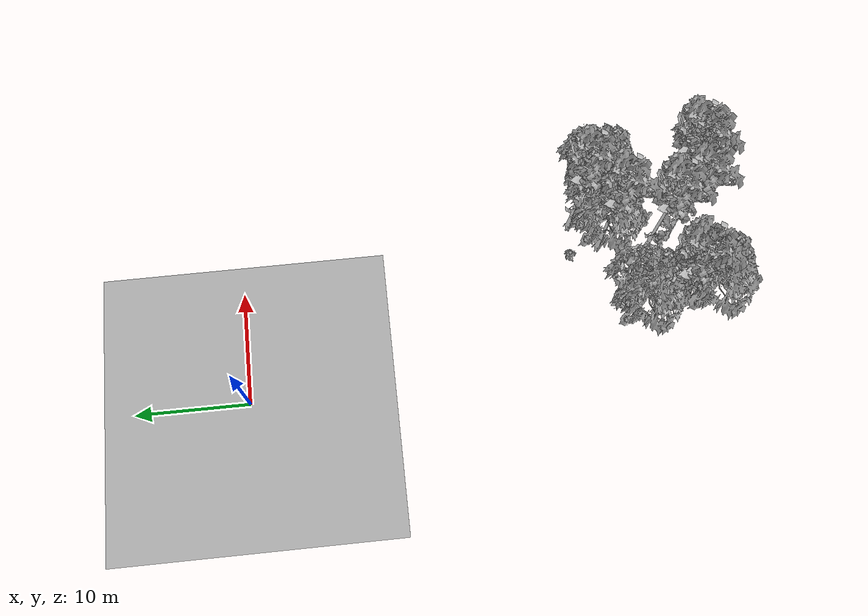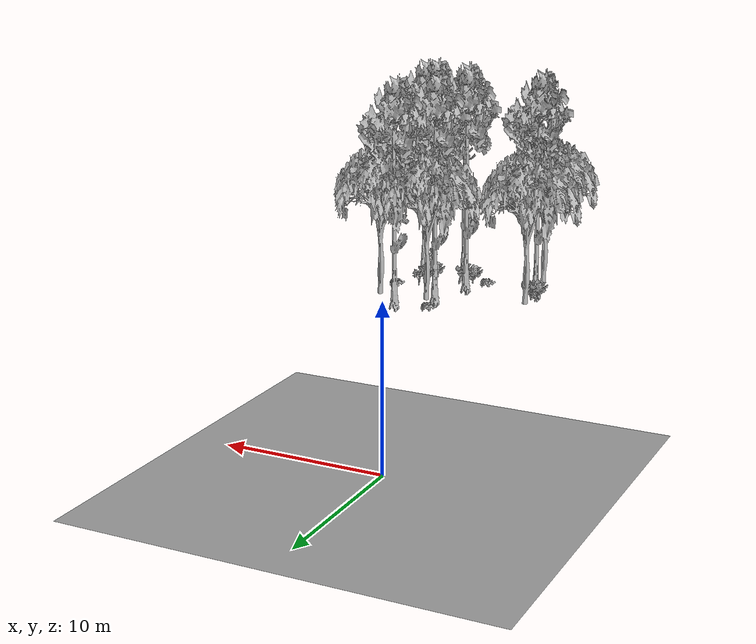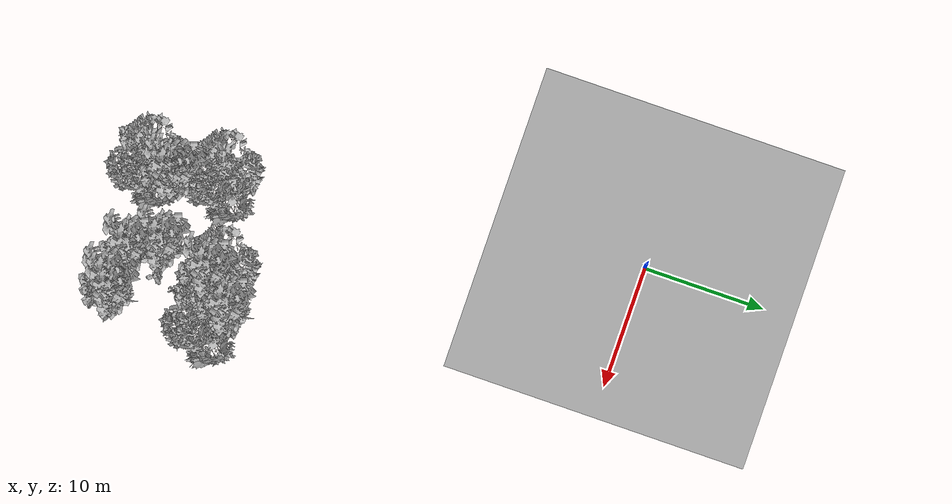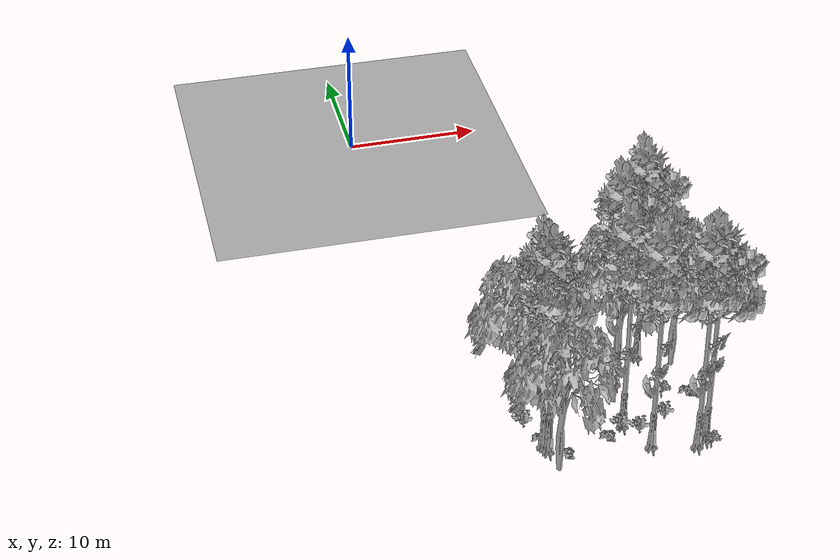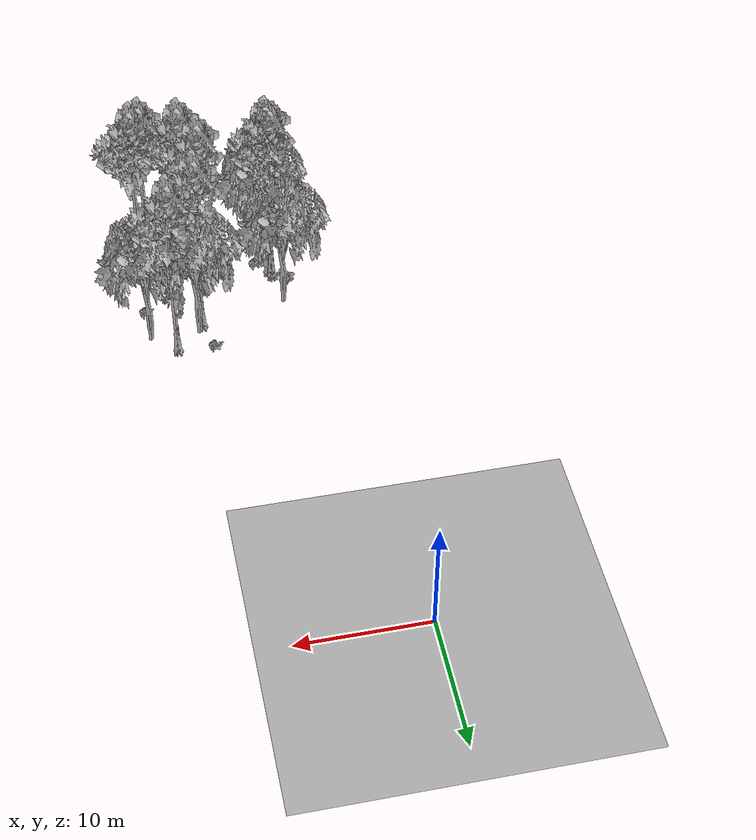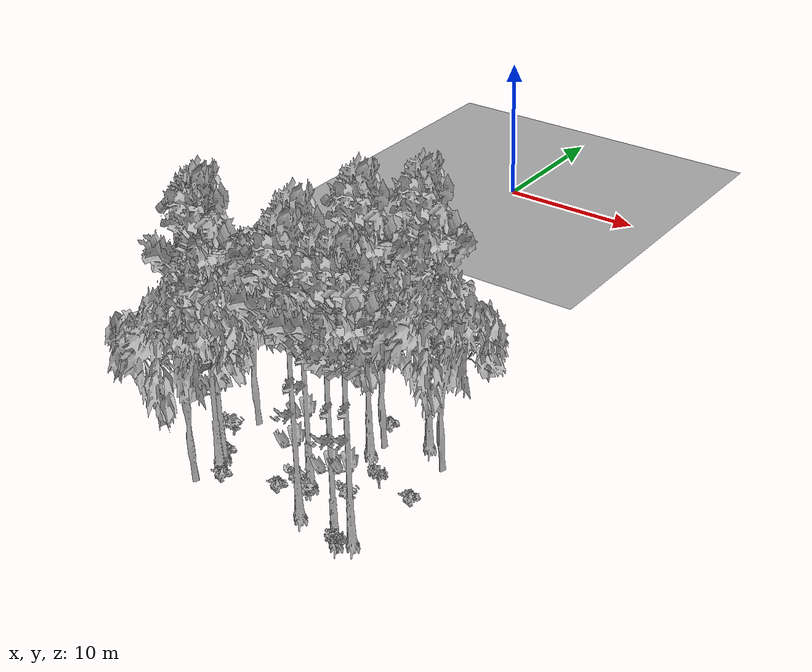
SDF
<sdf version="1.7">
 <world name="default">
  <model name="ground_plane">
   <static>1</static>
   <link name="link">
    <collision name="collision">
     <pose>-50 0 0 0 -0 0</pose>
     <geometry><plane><normal>0 0 1</normal><size>80 80</size></plane></geometry>
     <surface><contact><ode><min_depth>0.01</min_depth><max_vel>0</max_vel></ode></contact></surface>
    </collision>
    <visual name="grass">
     <cast_shadows>0</cast_shadows>
     <geometry>
      <mesh>
       <scale>0.46714285714285714 0.46714285714285714 0.1</scale>
       <uri>file://grass_plane/meshes/grass_plane.dae</uri>
      </mesh>
     </geometry>
    </visual>
   </link>
  </model>
  <model name="Tree 107">
   <static>1</static>
   <pose>13.829443289982414 -29.807317841424208 0 1.57079 -0 0</pose>
   <link name="link">
    <collision name="collision">
     <geometry><mesh><scale>3.5 5 3.5</scale><uri>model://tree_9/meshes/tree_9.obj</uri></mesh></geometry>
    </collision>
    <visual name="visual">
     <geometry><mesh><scale>3.5 5 3.5</scale><uri>model://tree_9/meshes/tree_9.obj</uri></mesh></geometry>
    </visual>
   </link>
  </model>
  <model name="Tree 118">
   <static>1</static>
   <pose>11.77483607905922 -31.369533630708794 0 1.57079 -0 0</pose>
   <link name="link">
    <collision name="collision">
     <geometry><mesh><scale>3.5 5 3.5</scale><uri>model://tree_2/meshes/tree_2.obj</uri></mesh></geometry>
    </collision>
    <visual name="visual">
     <geometry><mesh><scale>3.5 5 3.5</scale><uri>model://tree_2/meshes/tree_2.obj</uri></mesh></geometry>
    </visual>
   </link>
  </model>
  <model name="Tree 199">
   <static>1</static>
   <pose>14.799170153847164 -39.245879725014845 0 1.57079 -0 0</pose>
   <link name="link">
    <collision name="collision">
     <geometry><mesh><scale>3.5 5 3.5</scale><uri>model://tree_9/meshes/tree_9.obj</uri></mesh></geometry>
    </collision>
    <visual name="visual">
     <geometry><mesh><scale>3.5 5 3.5</scale><uri>model://tree_9/meshes/tree_9.obj</uri></mesh></geometry>
    </visual>
   </link>
  </model>
  <model name="Tree 246">
   <static>1</static>
   <pose>15.511843120954062 -38.7841113102527 0 1.57079 -0 0</pose>
   <link name="link">
    <collision name="collision">
     <geometry><mesh><scale>3.5 5 3.5</scale><uri>model://tree_9/meshes/tree_9.obj</uri></mesh></geometry>
    </collision>
    <visual name="visual">
     <geometry><mesh><scale>3.5 5 3.5</scale><uri>model://tree_9/meshes/tree_9.obj</uri></mesh></geometry>
    </visual>
   </link>
  </model>
  <model name="Tree 283">
   <static>1</static>
   <pose>4.565895448874173 -33.585229523545365 0 1.57079 -0 0</pose>
   <link name="link">
    <collision name="collision">
     <geometry><mesh><scale>3.5 5 3.5</scale><uri>model://tree_2/meshes/tree_2.obj</uri></mesh></geometry>
    </collision>
    <visual name="visual">
     <geometry><mesh><scale>3.5 5 3.5</scale><uri>model://tree_2/meshes/tree_2.obj</uri></mesh></geometry>
    </visual>
   </link>
  </model>
  <model name="Tree 328">
   <static>1</static>
   <pose>5.285471791204529 -37.480741346289015 0 1.57079 -0 0</pose>
   <link name="link">
    <collision name="collision">
     <geometry><mesh><scale>3.5 5 3.5</scale><uri>model://tree_9/meshes/tree_9.obj</uri></mesh></geometry>
    </collision>
    <visual name="visual">
     <geometry><mesh><scale>3.5 5 3.5</scale><uri>model://tree_9/meshes/tree_9.obj</uri></mesh></geometry>
    </visual>
   </link>
  </model>
  <model name="Tree 359">
   <static>1</static>
   <pose>5.318794608032043 -39.489842682834194 0 1.57079 -0 0</pose>
   <link name="link">
    <collision name="collision">
     <geometry><mesh><scale>3.5 5 3.5</scale><uri>model://tree_2/meshes/tree_2.obj</uri></mesh></geometry>
    </collision>
    <visual name="visual">
     <geometry><mesh><scale>3.5 5 3.5</scale><uri>model://tree_2/meshes/tree_2.obj</uri></mesh></geometry>
    </visual>
   </link>
  </model>
  <model name="Tree 453">
   <static>1</static>
   <pose>11.904307815891052 -38.579614885468594 0 1.57079 -0 0</pose>
   <link name="link">
    <collision name="collision">
     <geometry><mesh><scale>3.5 5 3.5</scale><uri>model://tree_9/meshes/tree_9.obj</uri></mesh></geometry>
    </collision>
    <visual name="visual">
     <geometry><mesh><scale>3.5 5 3.5</scale><uri>model://tree_9/meshes/tree_9.obj</uri></mesh></geometry>
    </visual>
   </link>
  </model>
  <model name="Tree 456">
   <static>1</static>
   <pose>15.668170861707225 -31.322461276277302 0 1.57079 -0 0</pose>
   <link name="link">
    <collision name="collision">
     <geometry><mesh><scale>3.5 5 3.5</scale><uri>model://tree_2/meshes/tree_2.obj</uri></mesh></geometry>
    </collision>
    <visual name="visual">
     <geometry><mesh><scale>3.5 5 3.5</scale><uri>model://tree_2/meshes/tree_2.obj</uri></mesh></geometry>
    </visual>
   </link>
  </model>
  <model name="Tree 534">
   <static>1</static>
   <pose>5.082371462436818 -36.93113905826096 0 1.57079 -0 0</pose>
   <link name="link">
    <collision name="collision">
     <geometry><mesh><scale>3.5 5 3.5</scale><uri>model://tree_9/meshes/tree_9.obj</uri></mesh></geometry>
    </collision>
    <visual name="visual">
     <geometry><mesh><scale>3.5 5 3.5</scale><uri>model://tree_9/meshes/tree_9.obj</uri></mesh></geometry>
    </visual>
   </link>
  </model>
  <model name="Tree 568">
   <static>1</static>
   <pose>10.706131798276012 -36.257833490336424 0 1.57079 -0 0</pose>
   <link name="link">
    <collision name="collision">
     <geometry><mesh><scale>3.5 5 3.5</scale><uri>model://tree_9/meshes/tree_9.obj</uri></mesh></geometry>
    </collision>
    <visual name="visual">
     <geometry><mesh><scale>3.5 5 3.5</scale><uri>model://tree_9/meshes/tree_9.obj</uri></mesh></geometry>
    </visual>
   </link>
  </model>
  <model name="Tree 629">
   <static>1</static>
   <pose>11.527121829128127 -32.151770020501246 0 1.57079 -0 0</pose>
   <link name="link">
    <collision name="collision">
     <geometry><mesh><scale>3.5 5 3.5</scale><uri>model://tree_9/meshes/tree_9.obj</uri></mesh></geometry>
    </collision>
    <visual name="visual">
     <geometry><mesh><scale>3.5 5 3.5</scale><uri>model://tree_9/meshes/tree_9.obj</uri></mesh></geometry>
    </visual>
   </link>
  </model>
  <model name="Bush 188">
   <static>1</static>
   <pose>10.364842901492842 -36.921465264294035 0 1.57079 -0 0</pose>
   <link name="link">
    <collision name="collision">
     <geometry><mesh><scale>2 2 2</scale><uri>model://bush_0/meshes/bush_0.obj</uri></mesh></geometry>
     <surface><contact><collide_without_contact>false</collide_without_contact></contact></surface>
    </collision>
    <visual name="visual">
     <geometry><mesh><scale>2 2 2</scale><uri>model://bush_0/meshes/bush_0.obj</uri></mesh></geometry>
    </visual>
   </link>
  </model>
  <model name="Bush 215">
   <static>1</static>
   <pose>6.220337808872557 -38.347594938956746 0 1.57079 -0 0</pose>
   <link name="link">
    <collision name="collision">
     <geometry><mesh><scale>2 2 2</scale><uri>model://bush_2/meshes/bush_2.obj</uri></mesh></geometry>
     <surface><contact><collide_without_contact>false</collide_without_contact></contact></surface>
    </collision>
    <visual name="visual">
     <geometry><mesh><scale>2 2 2</scale><uri>model://bush_2/meshes/bush_2.obj</uri></mesh></geometry>
    </visual>
   </link>
  </model>
  <model name="Bush 218">
   <static>1</static>
   <pose>13.468285671360384 -36.52952398885397 0 1.57079 -0 0</pose>
   <link name="link">
    <collision name="collision">
     <geometry><mesh><scale>2 2 2</scale><uri>model://bush_0/meshes/bush_0.obj</uri></mesh></geometry>
     <surface><contact><collide_without_contact>false</collide_without_contact></contact></surface>
    </collision>
    <visual name="visual">
     <geometry><mesh><scale>2 2 2</scale><uri>model://bush_0/meshes/bush_0.obj</uri></mesh></geometry>
    </visual>
   </link>
  </model>
  <model name="Bush 398">
   <static>1</static>
   <pose>15.80870474697668 -34.353317293655834 0 1.57079 -0 0</pose>
   <link name="link">
    <collision name="collision">
     <geometry><mesh><scale>2 2 2</scale><uri>model://bush_2/meshes/bush_2.obj</uri></mesh></geometry>
     <surface><contact><collide_without_contact>false</collide_without_contact></contact></surface>
    </collision>
    <visual name="visual">
     <geometry><mesh><scale>2 2 2</scale><uri>model://bush_2/meshes/bush_2.obj</uri></mesh></geometry>
    </visual>
   </link>
  </model>
  <model name="Bush 415">
   <static>1</static>
   <pose>4.268219932798779 -35.194967136342456 0 1.57079 -0 0</pose>
   <link name="link">
    <collision name="collision">
     <geometry><mesh><scale>2 2 2</scale><uri>model://bush_0/meshes/bush_0.obj</uri></mesh></geometry>
     <surface><contact><collide_without_contact>false</collide_without_contact></contact></surface>
    </collision>
    <visual name="visual">
     <geometry><mesh><scale>2 2 2</scale><uri>model://bush_0/meshes/bush_0.obj</uri></mesh></geometry>
    </visual>
   </link>
  </model>
  <model name="Bush 416">
   <static>1</static>
   <pose>11.458106027882494 -37.48565933750169 0 1.57079 -0 0</pose>
   <link name="link">
    <collision name="collision">
     <geometry><mesh><scale>2 2 2</scale><uri>model://bush_0/meshes/bush_0.obj</uri></mesh></geometry>
     <surface><contact><collide_without_contact>false</collide_without_contact></contact></surface>
    </collision>
    <visual name="visual">
     <geometry><mesh><scale>2 2 2</scale><uri>model://bush_0/meshes/bush_0.obj</uri></mesh></geometry>
    </visual>
   </link>
  </model>
  <model name="Bush 420">
   <static>1</static>
   <pose>15.494907490544051 -39.91776540943018 0 1.57079 -0 0</pose>
   <link name="link">
    <collision name="collision">
     <geometry><mesh><scale>2 2 2</scale><uri>model://bush_5/meshes/bush_5.obj</uri></mesh></geometry>
     <surface><contact><collide_without_contact>false</collide_without_contact></contact></surface>
    </collision>
    <visual name="visual">
     <geometry><mesh><scale>2 2 2</scale><uri>model://bush_5/meshes/bush_5.obj</uri></mesh></geometry>
    </visual>
   </link>
  </model>
  <model name="Bush 466">
   <static>1</static>
   <pose>4.950524329967173 -36.609838888239956 0 1.57079 -0 0</pose>
   <link name="link">
    <collision name="collision">
     <geometry><mesh><scale>2 2 2</scale><uri>model://bush_2/meshes/bush_2.obj</uri></mesh></geometry>
     <surface><contact><collide_without_contact>false</collide_without_contact></contact></surface>
    </collision>
    <visual name="visual">
     <geometry><mesh><scale>2 2 2</scale><uri>model://bush_2/meshes/bush_2.obj</uri></mesh></geometry>
    </visual>
   </link>
  </model>
  <model name="Bush 486">
   <static>1</static>
   <pose>13.993446336069766 -34.53220731767061 0 1.57079 -0 0</pose>
   <link name="link">
    <collision name="collision">
     <geometry><mesh><scale>2 2 2</scale><uri>model://bush_5/meshes/bush_5.obj</uri></mesh></geometry>
     <surface><contact><collide_without_contact>false</collide_without_contact></contact></surface>
    </collision>
    <visual name="visual">
     <geometry><mesh><scale>2 2 2</scale><uri>model://bush_5/meshes/bush_5.obj</uri></mesh></geometry>
    </visual>
   </link>
  </model>
  <model name="Bush 535">
   <static>1</static>
   <pose>10.843572869215926 -29.529763963094425 0 1.57079 -0 0</pose>
   <link name="link">
    <collision name="collision">
     <geometry><mesh><scale>2 2 2</scale><uri>model://bush_2/meshes/bush_2.obj</uri></mesh></geometry>
     <surface><contact><collide_without_contact>false</collide_without_contact></contact></surface>
    </collision>
    <visual name="visual">
     <geometry><mesh><scale>2 2 2</scale><uri>model://bush_2/meshes/bush_2.obj</uri></mesh></geometry>
    </visual>
   </link>
  </model>
  <model name="Bush 563">
   <static>1</static>
   <pose>9.31202135310236 -37.38928500727731 0 1.57079 -0 0</pose>
   <link name="link">
    <collision name="collision">
     <geometry><mesh><scale>2 2 2</scale><uri>model://bush_2/meshes/bush_2.obj</uri></mesh></geometry>
     <surface><contact><collide_without_contact>false</collide_without_contact></contact></surface>
    </collision>
    <visual name="visual">
     <geometry><mesh><scale>2 2 2</scale><uri>model://bush_2/meshes/bush_2.obj</uri></mesh></geometry>
    </visual>
   </link>
  </model>
 </world>
</sdf>
